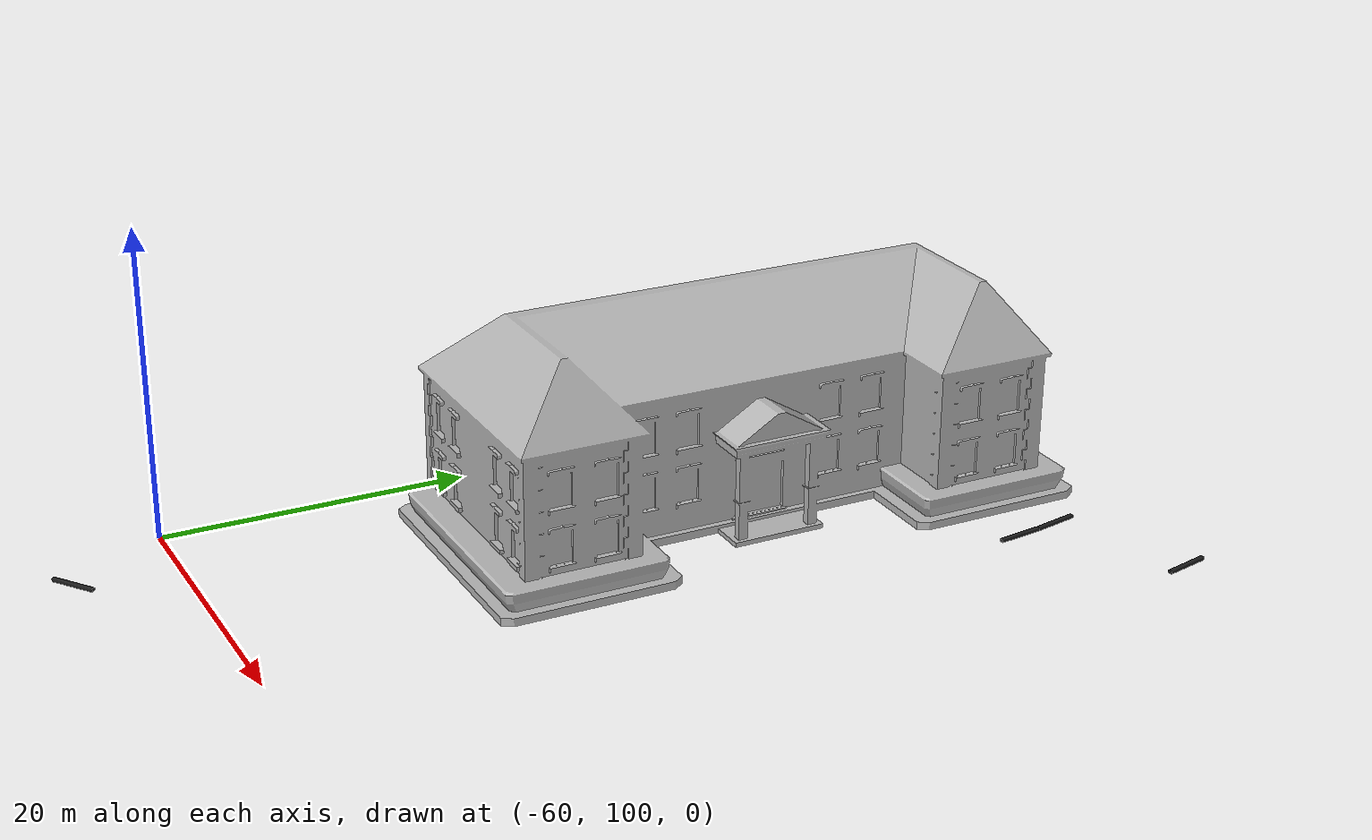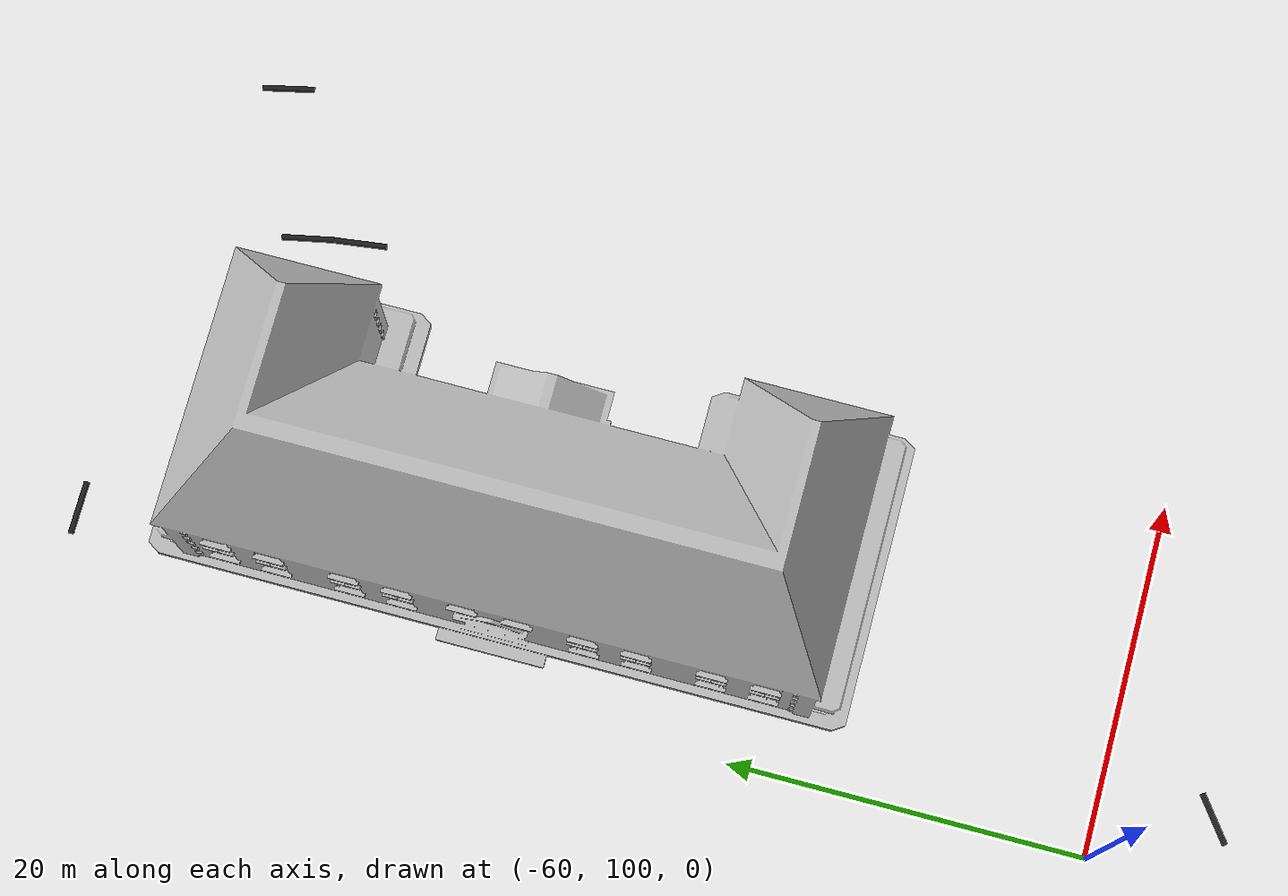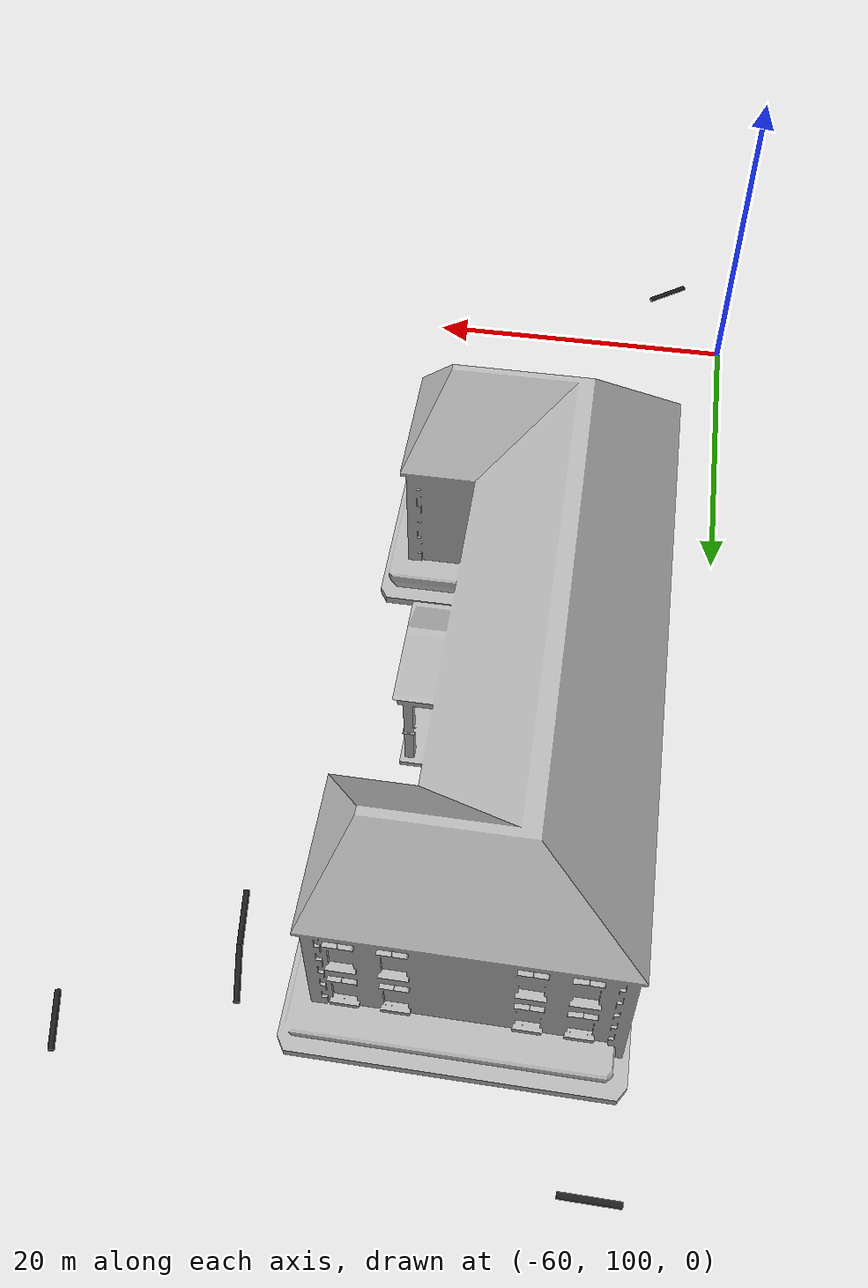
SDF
<sdf version="1.7">
 <world name="default">
  <model name="bar2_17">
   <static>1</static>
   <link name="link_3">
    <inertial>
     <mass>1</mass>
     <inertia>
      <ixx>0.166667</ixx>
      <ixy>0</ixy>
      <ixz>0</ixz>
      <iyy>0.166667</iyy>
      <iyz>0</iyz>
      <izz>0.166667</izz>
     </inertia>
    </inertial>
    <pose>4.47991 -0.091961 0 0 -0 0</pose>
    <visual name="visual">
     <geometry>
      <mesh><uri>/home/leejeonghun/model_editor_models/bar2.dae</uri><scale>1 1 1</scale></mesh>
     </geometry>
     <material>
      <lighting>1</lighting>
      <script><uri>file://media/materials/scripts/gazebo.material</uri><name>Gazebo/Black</name></script>
      <shader type="pixel"/>
     </material>
    </visual>
    <collision name="collision">
     <geometry>
      <mesh><uri>/home/leejeonghun/model_editor_models/bar2.dae</uri><scale>1 1 1</scale></mesh>
     </geometry>
     <surface>
      <friction>
       <ode><mu>1</mu><mu2>1</mu2><fdir1>0 0 0</fdir1><slip1>0</slip1><slip2>0</slip2></ode>
       <torsional>
        <coefficient>1</coefficient>
        <patch_radius>0</patch_radius>
        <surface_radius>0</surface_radius>
        <use_patch_radius>1</use_patch_radius>
        <ode><slip>0</slip></ode>
       </torsional>
      </friction>
      <bounce><restitution_coefficient>0</restitution_coefficient><threshold>1e+06</threshold></bounce>
      <contact>
       <collide_without_contact>0</collide_without_contact>
       <collide_without_contact_bitmask>1</collide_without_contact_bitmask>
       <collide_bitmask>1</collide_bitmask>
       <ode>
        <soft_cfm>0</soft_cfm>
        <soft_erp>0.2</soft_erp>
        <kp>1e+13</kp>
        <kd>1</kd>
        <max_vel>0.01</max_vel>
        <min_depth>0</min_depth>
       </ode>
       <bullet>
        <split_impulse>1</split_impulse>
        <split_impulse_penetration_threshold>-0.01</split_impulse_penetration_threshold>
        <soft_cfm>0</soft_cfm>
        <soft_erp>0.2</soft_erp>
        <kp>1e+13</kp>
        <kd>1</kd>
       </bullet>
      </contact>
     </surface>
    </collision>
   </link>
   <static>0</static>
   <pose>-39.7586 98.4479 0 0 -0 0.6352</pose>
  </model>
  <model name="bar2_24">
   <static>1</static>
   <link name="link_3">
    <inertial>
     <mass>1</mass>
     <inertia>
      <ixx>0.166667</ixx>
      <ixy>0</ixy>
      <ixz>0</ixz>
      <iyy>0.166667</iyy>
      <iyz>0</iyz>
      <izz>0.166667</izz>
     </inertia>
    </inertial>
    <pose>4.47991 -0.091961 0 0 -0 0</pose>
    <visual name="visual">
     <geometry>
      <mesh><uri>/home/leejeonghun/model_editor_models/bar2.dae</uri><scale>1 1 1</scale></mesh>
     </geometry>
     <material>
      <lighting>1</lighting>
      <script><uri>file://media/materials/scripts/gazebo.material</uri><name>Gazebo/Black</name></script>
      <shader type="pixel"/>
     </material>
    </visual>
    <collision name="collision">
     <geometry>
      <mesh><uri>/home/leejeonghun/model_editor_models/bar2.dae</uri><scale>1 1 1</scale></mesh>
     </geometry>
     <surface>
      <friction>
       <ode><mu>1</mu><mu2>1</mu2><fdir1>0 0 0</fdir1><slip1>0</slip1><slip2>0</slip2></ode>
       <torsional>
        <coefficient>1</coefficient>
        <patch_radius>0</patch_radius>
        <surface_radius>0</surface_radius>
        <use_patch_radius>1</use_patch_radius>
        <ode><slip>0</slip></ode>
       </torsional>
      </friction>
      <bounce><restitution_coefficient>0</restitution_coefficient><threshold>1e+06</threshold></bounce>
      <contact>
       <collide_without_contact>0</collide_without_contact>
       <collide_without_contact_bitmask>1</collide_without_contact_bitmask>
       <collide_bitmask>1</collide_bitmask>
       <ode>
        <soft_cfm>0</soft_cfm>
        <soft_erp>0.2</soft_erp>
        <kp>1e+13</kp>
        <kd>1</kd>
        <max_vel>0.01</max_vel>
        <min_depth>0</min_depth>
       </ode>
       <bullet>
        <split_impulse>1</split_impulse>
        <split_impulse_penetration_threshold>-0.01</split_impulse_penetration_threshold>
        <soft_cfm>0</soft_cfm>
        <soft_erp>0.2</soft_erp>
        <kp>1e+13</kp>
        <kd>1</kd>
       </bullet>
      </contact>
     </surface>
    </collision>
   </link>
   <static>0</static>
   <pose>-40.6578 130.768 0 0 0 -1.44389</pose>
  </model>
  <model name="bar2_25">
   <static>1</static>
   <link name="link_3">
    <inertial>
     <mass>1</mass>
     <inertia>
      <ixx>0.166667</ixx>
      <ixy>0</ixy>
      <ixz>0</ixz>
      <iyy>0.166667</iyy>
      <iyz>0</iyz>
      <izz>0.166667</izz>
     </inertia>
    </inertial>
    <pose>4.47991 -0.091961 0 0 -0 0</pose>
    <visual name="visual">
     <geometry>
      <mesh><uri>/home/leejeonghun/model_editor_models/bar2.dae</uri><scale>1 1 1</scale></mesh>
     </geometry>
     <material>
      <lighting>1</lighting>
      <script><uri>file://media/materials/scripts/gazebo.material</uri><name>Gazebo/Black</name></script>
      <shader type="pixel"/>
     </material>
    </visual>
    <collision name="collision">
     <geometry>
      <mesh><uri>/home/leejeonghun/model_editor_models/bar2.dae</uri><scale>1 1 1</scale></mesh>
     </geometry>
     <surface>
      <friction>
       <ode><mu>1</mu><mu2>1</mu2><fdir1>0 0 0</fdir1><slip1>0</slip1><slip2>0</slip2></ode>
       <torsional>
        <coefficient>1</coefficient>
        <patch_radius>0</patch_radius>
        <surface_radius>0</surface_radius>
        <use_patch_radius>1</use_patch_radius>
        <ode><slip>0</slip></ode>
       </torsional>
      </friction>
      <bounce><restitution_coefficient>0</restitution_coefficient><threshold>1e+06</threshold></bounce>
      <contact>
       <collide_without_contact>0</collide_without_contact>
       <collide_without_contact_bitmask>1</collide_without_contact_bitmask>
       <collide_bitmask>1</collide_bitmask>
       <ode>
        <soft_cfm>0</soft_cfm>
        <soft_erp>0.2</soft_erp>
        <kp>1e+13</kp>
        <kd>1</kd>
        <max_vel>0.01</max_vel>
        <min_depth>0</min_depth>
       </ode>
       <bullet>
        <split_impulse>1</split_impulse>
        <split_impulse_penetration_threshold>-0.01</split_impulse_penetration_threshold>
        <soft_cfm>0</soft_cfm>
        <soft_erp>0.2</soft_erp>
        <kp>1e+13</kp>
        <kd>1</kd>
       </bullet>
      </contact>
     </surface>
    </collision>
   </link>
   <static>0</static>
   <pose>-39.9618 133.496 0 0 0 -1.3741</pose>
  </model>
  <model name="bar2_40">
   <static>1</static>
   <link name="link_3">
    <inertial>
     <mass>1</mass>
     <inertia>
      <ixx>0.166667</ixx>
      <ixy>0</ixy>
      <ixz>0</ixz>
      <iyy>0.166667</iyy>
      <iyz>0</iyz>
      <izz>0.166667</izz>
     </inertia>
    </inertial>
    <pose>4.47991 -0.091961 0 0 -0 0</pose>
    <visual name="visual">
     <geometry>
      <mesh><uri>/home/leejeonghun/model_editor_models/bar2.dae</uri><scale>1 1 1</scale></mesh>
     </geometry>
     <material>
      <lighting>1</lighting>
      <script><uri>file://media/materials/scripts/gazebo.material</uri><name>Gazebo/Black</name></script>
      <shader type="pixel"/>
     </material>
    </visual>
    <collision name="collision">
     <geometry>
      <mesh><uri>/home/leejeonghun/model_editor_models/bar2.dae</uri><scale>1 1 1</scale></mesh>
     </geometry>
     <surface>
      <friction>
       <ode><mu>1</mu><mu2>1</mu2><fdir1>0 0 0</fdir1><slip1>0</slip1><slip2>0</slip2></ode>
       <torsional>
        <coefficient>1</coefficient>
        <patch_radius>0</patch_radius>
        <surface_radius>0</surface_radius>
        <use_patch_radius>1</use_patch_radius>
        <ode><slip>0</slip></ode>
       </torsional>
      </friction>
      <bounce><restitution_coefficient>0</restitution_coefficient><threshold>1e+06</threshold></bounce>
      <contact>
       <collide_without_contact>0</collide_without_contact>
       <collide_without_contact_bitmask>1</collide_without_contact_bitmask>
       <collide_bitmask>1</collide_bitmask>
       <ode>
        <soft_cfm>0</soft_cfm>
        <soft_erp>0.2</soft_erp>
        <kp>1e+13</kp>
        <kd>1</kd>
        <max_vel>0.01</max_vel>
        <min_depth>0</min_depth>
       </ode>
       <bullet>
        <split_impulse>1</split_impulse>
        <split_impulse_penetration_threshold>-0.01</split_impulse_penetration_threshold>
        <soft_cfm>0</soft_cfm>
        <soft_erp>0.2</soft_erp>
        <kp>1e+13</kp>
        <kd>1</kd>
       </bullet>
      </contact>
     </surface>
    </collision>
   </link>
   <static>0</static>
   <pose>-31.3163 137.048 0 0 0 -1.35221</pose>
  </model>
  <model name="bar2_48">
   <static>1</static>
   <link name="link_3">
    <inertial>
     <mass>1</mass>
     <inertia>
      <ixx>0.166667</ixx>
      <ixy>0</ixy>
      <ixz>0</ixz>
      <iyy>0.166667</iyy>
      <iyz>0</iyz>
      <izz>0.166667</izz>
     </inertia>
    </inertial>
    <pose>4.47991 -0.091961 0 0 -0 0</pose>
    <visual name="visual">
     <geometry>
      <mesh><uri>/home/leejeonghun/model_editor_models/bar2.dae</uri><scale>1 1 1</scale></mesh>
     </geometry>
     <material>
      <lighting>1</lighting>
      <script><uri>file://media/materials/scripts/gazebo.material</uri><name>Gazebo/Black</name></script>
      <shader type="pixel"/>
     </material>
    </visual>
    <collision name="collision">
     <geometry>
      <mesh><uri>/home/leejeonghun/model_editor_models/bar2.dae</uri><scale>1 1 1</scale></mesh>
     </geometry>
     <surface>
      <friction>
       <ode><mu>1</mu><mu2>1</mu2><fdir1>0 0 0</fdir1><slip1>0</slip1><slip2>0</slip2></ode>
       <torsional>
        <coefficient>1</coefficient>
        <patch_radius>0</patch_radius>
        <surface_radius>0</surface_radius>
        <use_patch_radius>1</use_patch_radius>
        <ode><slip>0</slip></ode>
       </torsional>
      </friction>
      <bounce><restitution_coefficient>0</restitution_coefficient><threshold>1e+06</threshold></bounce>
      <contact>
       <collide_without_contact>0</collide_without_contact>
       <collide_without_contact_bitmask>1</collide_without_contact_bitmask>
       <collide_bitmask>1</collide_bitmask>
       <ode>
        <soft_cfm>0</soft_cfm>
        <soft_erp>0.2</soft_erp>
        <kp>1e+13</kp>
        <kd>1</kd>
        <max_vel>0.01</max_vel>
        <min_depth>0</min_depth>
       </ode>
       <bullet>
        <split_impulse>1</split_impulse>
        <split_impulse_penetration_threshold>-0.01</split_impulse_penetration_threshold>
        <soft_cfm>0</soft_cfm>
        <soft_erp>0.2</soft_erp>
        <kp>1e+13</kp>
        <kd>1</kd>
       </bullet>
      </contact>
     </surface>
    </collision>
   </link>
   <static>0</static>
   <pose>-39.5009 152.347 0 0 -0 0</pose>
  </model>
  <model name="schoo2">
   <static>1</static>
   <link name="link">
    <inertial>
     <mass>1</mass>
     <inertia><ixx>1</ixx><ixy>0</ixy><ixz>0</ixz><iyy>1</iyy><iyz>0</iyz><izz>1</izz></inertia>
    </inertial>
    <visual name="visual">
     <geometry><mesh><uri>model://school/meshes/school.dae</uri><scale>1.2 1 1</scale></mesh></geometry>
     <material>
      <lighting>1</lighting>
      <script><uri>/home/leejeonghun/model_editor_models/school_diffuse.jpg</uri><name>__default__</name></script>
      <shader type="pixel"><normal_map>__default__</normal_map></shader>
     </material>
    </visual>
    <collision name="collision">
     <geometry>
      <mesh><uri>/home/leejeonghun/.gazebo/models/school/meshes/school.dae</uri><scale>1.2 1 1</scale></mesh>
     </geometry>
     <surface>
      <friction>
       <ode><mu>1</mu><mu2>1</mu2><fdir1>0 0 0</fdir1><slip1>0</slip1><slip2>0</slip2></ode>
       <torsional>
        <coefficient>1</coefficient>
        <patch_radius>0</patch_radius>
        <surface_radius>0</surface_radius>
        <use_patch_radius>1</use_patch_radius>
        <ode><slip>0</slip></ode>
       </torsional>
      </friction>
      <bounce><restitution_coefficient>0</restitution_coefficient><threshold>1e+06</threshold></bounce>
      <contact>
       <collide_without_contact>0</collide_without_contact>
       <collide_without_contact_bitmask>1</collide_without_contact_bitmask>
       <collide_bitmask>1</collide_bitmask>
       <ode>
        <soft_cfm>0</soft_cfm>
        <soft_erp>0.2</soft_erp>
        <kp>1e+13</kp>
        <kd>1</kd>
        <max_vel>0.01</max_vel>
        <min_depth>0</min_depth>
       </ode>
       <bullet>
        <split_impulse>1</split_impulse>
        <split_impulse_penetration_threshold>-0.01</split_impulse_penetration_threshold>
        <soft_cfm>0</soft_cfm>
        <soft_erp>0.2</soft_erp>
        <kp>1e+13</kp>
        <kd>1</kd>
       </bullet>
      </contact>
     </surface>
    </collision>
   </link>
   <static>0</static>
   <pose>-51.1094 134.052 0 0 -0 1.57089</pose>
  </model>
 </world>
</sdf>
